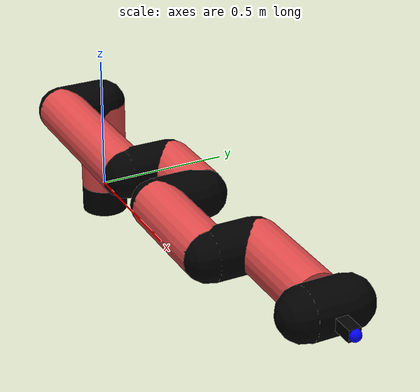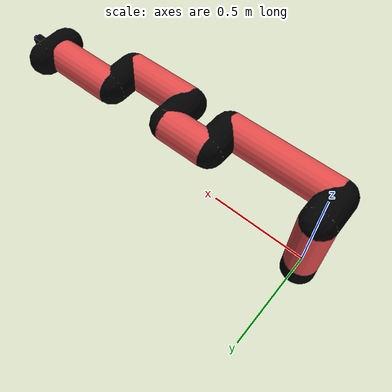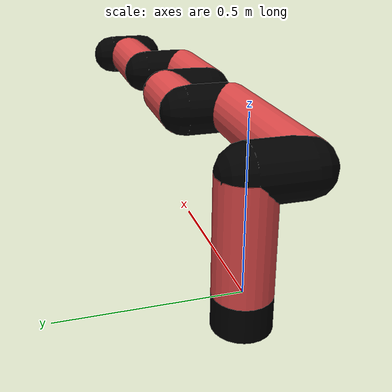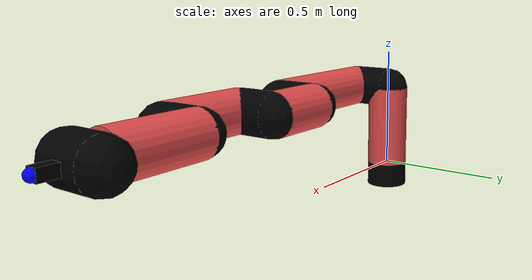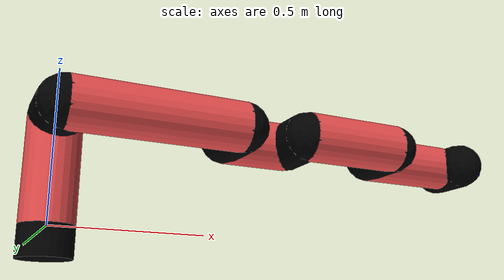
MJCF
<mujoco model="manipulator">
		<compiler angle="degree" coordinate="local" inertiafromgeom="auto" meshdir="meshes/"/>
		<option gravity="0 0 0" integrator="RK4" iterations="30" timestep="0.01"/>

		<default>
		<joint armature="1" limited="true" stiffness="10" damping="15" frictionloss="5.0"/>
		<geom conaffinity="1" condim="3" contype="1" friction=".5 .1 .1" margin="0.002"/>
		<motor ctrllimited="true"/>
		<position ctrllimited="true"/>
		</default>

		<asset>
		<texture builtin="gradient" height="100" rgb1="1.0 1.0 1.0" rgb2="1.0 1.0 1.0" type="skybox" width="100"/>
		<texture builtin="flat" height="32" name="arm_tex" rgb1="0.9 0.3 0.3" type="2d" width="32"/>
		<texture builtin="flat" height="32" name="gripper_tex" rgb1="0.0 0.0 0.0" type="cube" width="32"/>

		<material name="arm_mat" shininess="0.1" specular="0.1" texture="arm_tex"/>
		<material name="gripper_mat" shininess="1" specular="1" texture="gripper_tex"/>
		</asset>

		<worldbody>
		<light cutoff="45" diffuse=".8 .8 .8" dir="0 0.16 -1" directional="false" name="light" pos="0 -2.0 8.0" specular="0.3 0.3 0.3"/>

		<body name="base_link" pos="0 0 -0.1">
		<geom fromto="0 0 0 0 0 0.1" material="arm_mat" name="base_link" rgba="0.0 0.0 0.0 1" size="0.085" type="cylinder"/>
		</body>

		<body name="l1" pos="0 0 0">
<geom fromto="0 0 0 0 0 0.34" material="arm_mat" name="l1" rgba="0.9 0.3 0.3 1" size="0.085" type="cylinder"/>
<geom fromto="0 0 0.34 0 -0.16 0.34" material="arm_mat" name="l1_ex" rgba="0.0 0.0 0.0 1" size="0.085" type="capsule"/>
<joint axis="0 0 1" name="j1" pos="0 0 0" range="-90 90" damping="34.93" frictionloss="9.2"/>

<body name="l2" pos="0 -0.16 0.34">
<geom fromto="0 0 0 0.57 0 0" material="arm_mat" name="l2" rgba="0.9 0.3 0.3 1" size="0.085" type="cylinder"/>
<geom fromto="0.57 0 0 0.57 0.16 0" material="arm_mat" name="l2_ex" rgba="0.0 0.0 0.0 1" size="0.085" type="capsule"/>
<joint axis="-0.22 0.88 0.15" name="j2" pos="0 0 0" range="-90 60" damping="28.17" frictionloss="10.35"/>

<body name="l3" pos="0.57 0.16 0">
<geom fromto="0 0 0 0.24 0 0" material="arm_mat" name="l3" rgba="0.9 0.3 0.3 1" size="0.085" type="cylinder"/>
<geom fromto="0.24 0 0 0.24 -0.16 0" material="arm_mat" name="l3_ex" rgba="0.0 0.0 0.0 1" size="0.085" type="capsule"/>
<joint axis="-0.15 1.07 0.01" name="j3" pos="0 0 0" range="-30 60" damping="26.5" frictionloss="11.95"/>

<body name="l4" pos="0.24 -0.16 0">
<geom fromto="0 0 0 0.36 0 0" material="arm_mat" name="l4" rgba="0.9 0.3 0.3 1" size="0.085" type="cylinder"/>
<geom fromto="0.36 0 0 0.36 0.16 0" material="arm_mat" name="l4_ex" rgba="0.0 0.0 0.0 1" size="0.085" type="capsule"/>
<joint axis="0.21 0.88 -0.22" name="j4" pos="0 0 0" range="-30 60" damping="29.37" frictionloss="8.89"/>

<body name="l5" pos="0.36 0.16 0">
<geom fromto="0 0 0 0.35 0 0" material="arm_mat" name="l5" rgba="0.9 0.3 0.3 1" size="0.085" type="cylinder"/>
<joint axis="0.12 1.14 0.2" name="j5" pos="0 0 0" range="-30 60" damping="22.69" frictionloss="10.85"/>

<body name="gripper" pos="0.35 0 0">
<geom fromto="0.05 -0.07 0 0.05 0.07 0" material="gripper_mat" name="gripper" rgba="0.0 0.0 0.0 1" size="0.085" type="capsule"/><joint axis="1 0 0" name="j6" pos="0 0 0" range="-90 90" damping="15" frictionloss="5.0"/><body name="finger" pos="0.1 0 0">
<geom fromto="0 0.0 0 0.1 0.0 0" material="gripper_mat" name="finger" rgba="0.0 0.0 0.0 1" size="0.020 0.06 0.06" type="box"/>
</body>
<site name="current" pos="0.2 0. 0.0" rgba="0. 0. 1.0 1" size="0.02" type="sphere"/>
</body>
</body>
</body>
</body>
</body>
</body>
</worldbody>
<actuator>
<motor ctrllimited="true" ctrlrange="-1.0 1.0" joint="j1" gear="84.61"/>
<motor ctrllimited="true" ctrlrange="-1.0 1.0" joint="j2" gear="68.95"/>
<motor ctrllimited="true" ctrlrange="-1.0 1.0" joint="j3" gear="82.58"/>
<motor ctrllimited="true" ctrlrange="-1.0 1.0" joint="j4" gear="91.48"/>
<motor ctrllimited="true" ctrlrange="-1.0 1.0" joint="j5" gear="63.67"/>
<motor ctrllimited="true" ctrlrange="-1.0 1.0" joint="j6" gear="80"/>
</actuator>
</mujoco>
